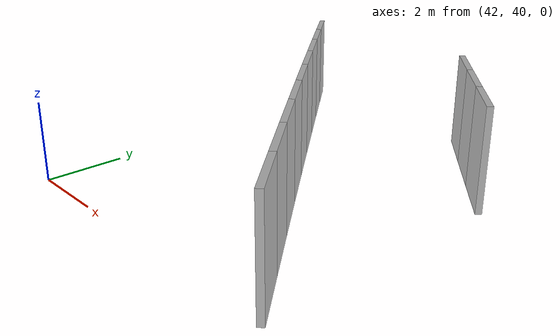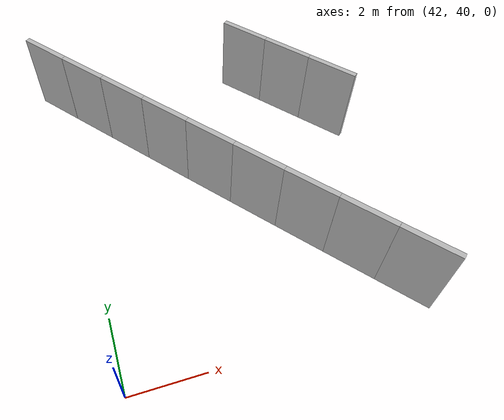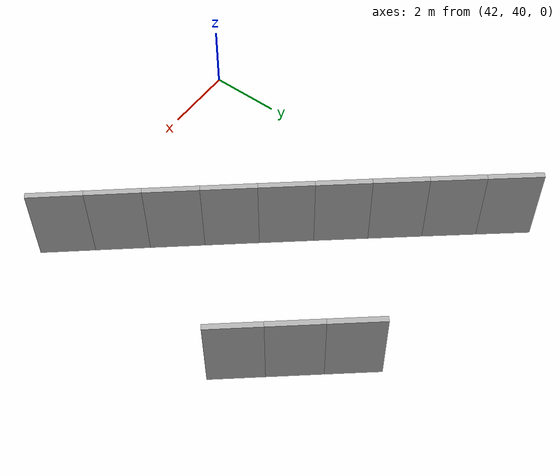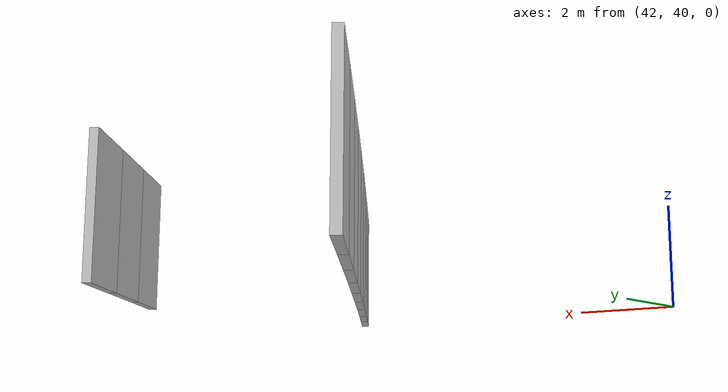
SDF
<?xml version="1.0" ?>
<sdf version="1.6">
  <model name="sps_0710">
    <pose frame="">0 0 0 0 -0 0</pose>
    <static>1</static>
    <self_collide>0</self_collide>
    <allow_auto_disable>0</allow_auto_disable>
    <link name="Wall8442">
      <kinematic>0</kinematic>
      <gravity>1</gravity>
      <self_collide>0</self_collide>
      <collision name="collision">
        <geometry>
          <box>
            <size>1.49895 0.15 2.5</size>
          </box>
        </geometry>
        <pose frame="">0 0 0 0 -0 0</pose>
      </collision>
      <visual name="visual">
        <geometry>
          <box>
            <size>1.49895 0.15 2.5</size>
          </box>
        </geometry>
        <pose frame="">0 0 0 0 -0 0</pose>
        <cast_shadows>1</cast_shadows>
        <transparency>0.0</transparency>
      </visual>
      <pose frame="">41.8502 49.8576 1.25 0 0 -0.896564</pose>
    </link>
    <link name="Wall8443">
      <kinematic>0</kinematic>
      <gravity>1</gravity>
      <self_collide>0</self_collide>
      <collision name="collision">
        <geometry>
          <box>
            <size>1.49902 0.15 2.5</size>
          </box>
        </geometry>
        <pose frame="">0 0 0 0 -0 0</pose>
      </collision>
      <visual name="visual">
        <geometry>
          <box>
            <size>1.49902 0.15 2.5</size>
          </box>
        </geometry>
        <pose frame="">0 0 0 0 -0 0</pose>
        <cast_shadows>1</cast_shadows>
        <transparency>0.0</transparency>
      </visual>
      <pose frame="">42.787 48.6874 1.25 0 0 -0.894879</pose>
    </link>
    <link name="Wall8444">
      <kinematic>0</kinematic>
      <gravity>1</gravity>
      <self_collide>0</self_collide>
      <collision name="collision">
        <geometry>
          <box>
            <size>1.49887 0.15 2.5</size>
          </box>
        </geometry>
        <pose frame="">0 0 0 0 -0 0</pose>
      </collision>
      <visual name="visual">
        <geometry>
          <box>
            <size>1.49887 0.15 2.5</size>
          </box>
        </geometry>
        <pose frame="">0 0 0 0 -0 0</pose>
        <cast_shadows>1</cast_shadows>
        <transparency>0.0</transparency>
      </visual>
      <pose frame="">43.7256 47.5187 1.25 0 0 -0.893442</pose>
    </link>
    <link name="Wall8445">
      <kinematic>0</kinematic>
      <gravity>1</gravity>
      <self_collide>0</self_collide>
      <collision name="collision">
        <geometry>
          <box>
            <size>1.49894 0.15 2.5</size>
          </box>
        </geometry>
        <pose frame="">0 0 0 0 -0 0</pose>
      </collision>
      <visual name="visual">
        <geometry>
          <box>
            <size>1.49894 0.15 2.5</size>
          </box>
        </geometry>
        <pose frame="">0 0 0 0 -0 0</pose>
        <cast_shadows>1</cast_shadows>
        <transparency>0.0</transparency>
      </visual>
      <pose frame="">44.666 46.3515 1.25 0 0 -0.891757</pose>
    </link>
    <link name="Wall8446">
      <kinematic>0</kinematic>
      <gravity>1</gravity>
      <self_collide>0</self_collide>
      <collision name="collision">
        <geometry>
          <box>
            <size>1.49892 0.15 2.5</size>
          </box>
        </geometry>
        <pose frame="">0 0 0 0 -0 0</pose>
      </collision>
      <visual name="visual">
        <geometry>
          <box>
            <size>1.49892 0.15 2.5</size>
          </box>
        </geometry>
        <pose frame="">0 0 0 0 -0 0</pose>
        <cast_shadows>1</cast_shadows>
        <transparency>0.0</transparency>
      </visual>
      <pose frame="">45.6083 45.1858 1.25 0 0 -0.890224</pose>
    </link>
    <link name="Wall8447">
      <kinematic>0</kinematic>
      <gravity>1</gravity>
      <self_collide>0</self_collide>
      <collision name="collision">
        <geometry>
          <box>
            <size>1.49884 0.15 2.5</size>
          </box>
        </geometry>
        <pose frame="">0 0 0 0 -0 0</pose>
      </collision>
      <visual name="visual">
        <geometry>
          <box>
            <size>1.49884 0.15 2.5</size>
          </box>
        </geometry>
        <pose frame="">0 0 0 0 -0 0</pose>
        <cast_shadows>1</cast_shadows>
        <transparency>0.0</transparency>
      </visual>
      <pose frame="">46.5524 44.0216 1.25 0 0 -0.888608</pose>
    </link>
    <link name="Wall8448">
      <kinematic>0</kinematic>
      <gravity>1</gravity>
      <self_collide>0</self_collide>
      <collision name="collision">
        <geometry>
          <box>
            <size>1.49921 0.15 2.5</size>
          </box>
        </geometry>
        <pose frame="">0 0 0 0 -0 0</pose>
      </collision>
      <visual name="visual">
        <geometry>
          <box>
            <size>1.49921 0.15 2.5</size>
          </box>
        </geometry>
        <pose frame="">0 0 0 0 -0 0</pose>
        <cast_shadows>1</cast_shadows>
        <transparency>0.0</transparency>
      </visual>
      <pose frame="">47.4984 42.8588 1.25 0 0 -0.887078</pose>
    </link>
    <link name="Wall8449">
      <kinematic>0</kinematic>
      <gravity>1</gravity>
      <self_collide>0</self_collide>
      <collision name="collision">
        <geometry>
          <box>
            <size>1.49891 0.15 2.5</size>
          </box>
        </geometry>
        <pose frame="">0 0 0 0 -0 0</pose>
      </collision>
      <visual name="visual">
        <geometry>
          <box>
            <size>1.49891 0.15 2.5</size>
          </box>
        </geometry>
        <pose frame="">0 0 0 0 -0 0</pose>
        <cast_shadows>1</cast_shadows>
        <transparency>0.0</transparency>
      </visual>
      <pose frame="">48.4463 41.6975 1.25 0 0 -0.885391</pose>
    </link>
    <link name="Wall8450">
      <kinematic>0</kinematic>
      <gravity>1</gravity>
      <self_collide>0</self_collide>
      <collision name="collision">
        <geometry>
          <box>
            <size>1.49895 0.15 2.5</size>
          </box>
        </geometry>
        <pose frame="">0 0 0 0 -0 0</pose>
      </collision>
      <visual name="visual">
        <geometry>
          <box>
            <size>1.49895 0.15 2.5</size>
          </box>
        </geometry>
        <pose frame="">0 0 0 0 -0 0</pose>
        <cast_shadows>1</cast_shadows>
        <transparency>0.0</transparency>
      </visual>
      <pose frame="">49.396 40.5378 1.25 0 0 -0.883884</pose>
    </link>
    <link name="Wall9526">
      <kinematic>0</kinematic>
      <gravity>1</gravity>
      <self_collide>0</self_collide>
      <collision name="collision">
        <geometry>
          <box>
            <size>1.4924 0.15 2.5</size>
          </box>
        </geometry>
        <pose frame="">0 0 0 0 -0 0</pose>
      </collision>
      <visual name="visual">
        <geometry>
          <box>
            <size>1.4924 0.15 2.5</size>
          </box>
        </geometry>
        <pose frame="">0 0 0 0 -0 0</pose>
        <cast_shadows>1</cast_shadows>
        <transparency>0.0</transparency>
      </visual>
      <pose frame="">47.8877 48.9518 1.25 0 0 -0.891789</pose>
    </link>
    <link name="Wall9527">
      <kinematic>0</kinematic>
      <gravity>1</gravity>
      <self_collide>0</self_collide>
      <collision name="collision">
        <geometry>
          <box>
            <size>1.49235 0.15 2.5</size>
          </box>
        </geometry>
        <pose frame="">0 0 0 0 -0 0</pose>
      </collision>
      <visual name="visual">
        <geometry>
          <box>
            <size>1.49235 0.15 2.5</size>
          </box>
        </geometry>
        <pose frame="">0 0 0 0 -0 0</pose>
        <cast_shadows>1</cast_shadows>
        <transparency>0.0</transparency>
      </visual>
      <pose frame="">48.8259 47.7912 1.25 0 0 -0.890134</pose>
    </link>
    <link name="Wall9528">
      <kinematic>0</kinematic>
      <gravity>1</gravity>
      <self_collide>0</self_collide>
      <collision name="collision">
        <geometry>
          <box>
            <size>1.49235 0.15 2.5</size>
          </box>
        </geometry>
        <pose frame="">0 0 0 0 -0 0</pose>
      </collision>
      <visual name="visual">
        <geometry>
          <box>
            <size>1.49235 0.15 2.5</size>
          </box>
        </geometry>
        <pose frame="">0 0 0 0 -0 0</pose>
        <cast_shadows>1</cast_shadows>
        <transparency>0.0</transparency>
      </visual>
      <pose frame="">49.7658 46.6321 1.25 0 0 -0.88871</pose>
    </link>
  </model>
</sdf>
